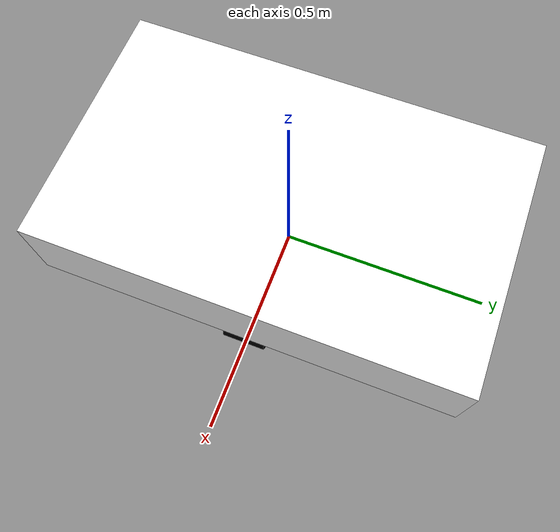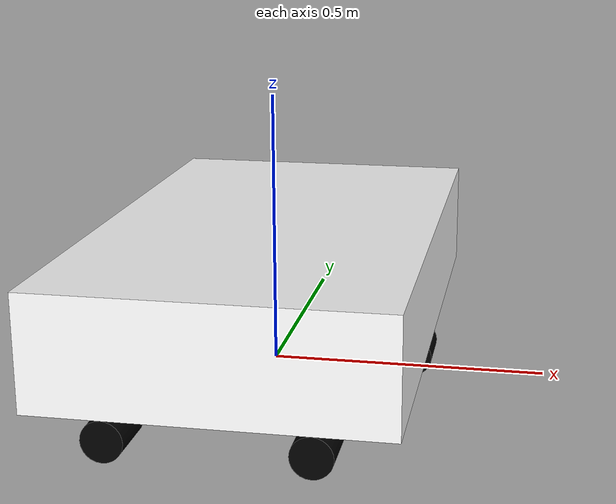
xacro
<?xml version="1.0"?>
<robot xmlns:xacro="http://www.ros.org/wiki/xacro" name="5_wheel_bot">

  <xacro:property name="base_width" value="1" />
  <xacro:property name="base_len" value="0.6" />
  <xacro:property name="base_height" value="0.2" />
  <xacro:property name="wheel_len" value="0.1" />
  <xacro:property name="wheel_radius" value="0.035" />
  <xacro:property name="pi" value="3.1415" />

  <material name="white">
    <color rgba="1 1 1 1"/>
  </material>
<material name="black">
    <color rgba="0 0 0 1"/>
</material>

<link name="base_link">
    <visual>
      <geometry>
        <box size="${base_len} ${base_width} ${base_height}"/>
      </geometry>
      <material name="white"/>
    </visual>
</link>

<link name="front_wheel">
    <visual>
      <origin rpy="${pi/2} 0 0" xyz="0 0 0"/>
      <geometry>
        <cylinder length="${wheel_len}" radius="${wheel_radius}"/>
      </geometry>
      <material name="black"/>
<origin rpy="0 0 0" xyz="0 0 0"/>
    </visual>
</link>

  <joint name="front_wheel_joint" type="continuous">
    <axis rpy="0 0 0" xyz="0 1 0"/>
    <parent link="base_link"/>
    <child link="front_wheel"/>
    <origin rpy="0 0 0" xyz="${base_len/2-wheel_radius} 0 -${base_height/2+wheel_radius}"/>
  </joint>

<link name="right_front_wheel">
    <visual>
      <origin rpy="${pi/2} 0 0" xyz="0 0 0"/>
      <geometry>
        <cylinder length="${wheel_len}" radius="${wheel_radius}"/>
      </geometry>
      <material name="black"/>

    </visual>
</link>

  <joint name="right_front_wheel_joint" type="continuous">
    <axis rpy="0 0 0" xyz="0 1 0"/>
    <parent link="base_link"/>
    <child link="right_front_wheel"/>
    <origin rpy="0 0 0" xyz="${base_len/2-wheel_radius-wheel_len} -${base_width/2-wheel_len/2} -${base_height/2+wheel_radius}"/>
  </joint>

<link name="right_back_wheel">
    <visual>
      <origin rpy="${pi/2} 0 0" xyz="0 0 0"/>
      <geometry>
        <cylinder length="${wheel_len}" radius="${wheel_radius}"/>
      </geometry>
      <material name="black"/>
    </visual>
</link>

  <joint name="right_back_wheel_joint" type="continuous">
    <axis rpy="0 0 0" xyz="0 1 0"/>
    <parent link="base_link"/>
    <child link="right_back_wheel"/>
    <origin rpy="0 0 0" xyz="-${base_len/2-wheel_radius-wheel_len} -${base_width/2-wheel_len/2} -${base_height/2+wheel_radius}"/>
  </joint>

<link name="left_front_wheel">
    <visual>
      <origin rpy="1.57075 0 0" xyz="0 0 0"/>
      <geometry>
        <cylinder length="${wheel_len}" radius="${wheel_radius}"/>
      </geometry>
      <material name="black"/>
    </visual>
</link>

  <joint name="left_front_wheel_joint" type="continuous">
    <axis rpy="0 0 0" xyz="0 1 0"/>
    <parent link="base_link"/>
    <child link="left_front_wheel"/>
    <origin rpy="0 0 0" xyz="${base_len/2-wheel_radius-wheel_len} ${base_width/2-wheel_len/2} -${base_height/2+wheel_radius}"/>
  </joint>

<link name="left_back_wheel">
    <visual>
      <origin rpy="${pi/2} 0 0" xyz="0 0 0"/>
      <geometry>
        <cylinder length="${wheel_len}" radius="${wheel_radius}"/>
      </geometry>
      <material name="black"/>
    </visual>
</link>

  <joint name="left_back_wheel_joint" type="continuous">
    <axis rpy="0 0 0" xyz="0 1 0"/>
    <parent link="base_link"/>
    <child link="left_back_wheel"/>
    <origin rpy="0 0 0" xyz="-${base_len/2-wheel_radius-wheel_len} ${base_width/2-wheel_len/2} -${base_height/2+wheel_radius}"/>
  </joint>
<link name="base_footprint">
</link>
<joint name="footprint_base" type="fixed">
<parent link="base_footprint"/>
<child link="base_link"/>
<origin xyz="0 0 ${base_height/2+(wheel_radius*2)}" rpy="0 0 0"/>
</joint>
</robot>
